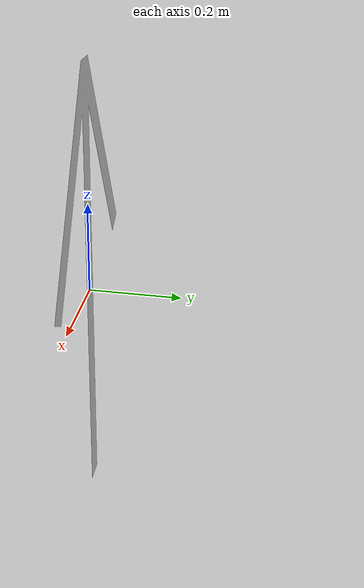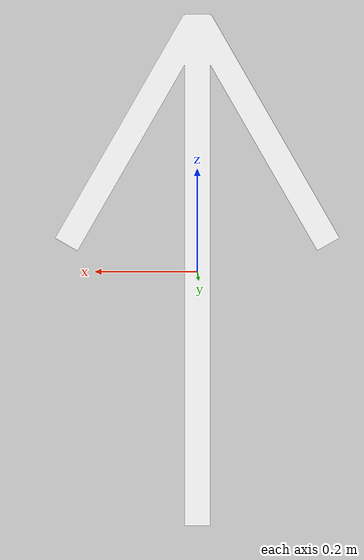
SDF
<?xml version="1.0" ?>
<sdf version="1.7">
    <model name="arrow">
        <static>false</static>
        <gravity>false</gravity>
        <pose>0 0 0 0 0 4.71</pose>
        <link name="arrow">
            <gravity>false</gravity>
            <inertial>
                <pose>0 0 0 0 0 0</pose>
                <mass>0.1</mass>
                <inertia>
                    <ixx>0.0003065083333333333</ixx>
                    <ixy>0</ixy>
                    <ixz>0</ixz>
                    <iyy>0.0001421774166666667</iyy>
                    <iyz>0</iyz>
                    <izz>0.0001670190833333333</izz>
                </inertia>
            </inertial>
            <visual name="arrow">
                <geometry>
                    <mesh>
                        <uri>file://install/target_model_pkg/share/target_model_pkg/urdf/arrow/meshes/arrow.dae</uri>
                        <scale>0.25 0.25 0.25</scale>
                    </mesh>
                </geometry>
                <material >
                    <ambient>1.0 1.0 1.0</ambient>
                    <diffuse>1.0 1.0 1.0</diffuse>
                    <specular>0.6 0.6 0.6</specular>
                </material>
            </visual>
        </link>
        <plugin name ="control_plugin" filename="libtarget_model_pkg_lib.so">

            <type>2</type>
        </plugin>
    </model>
</sdf>
